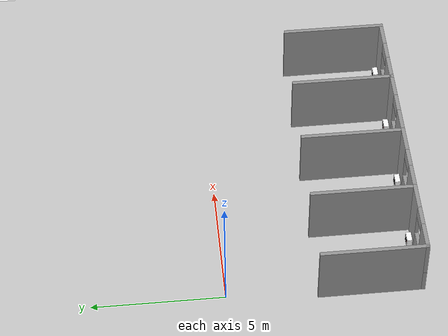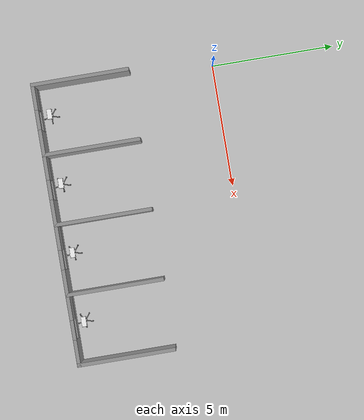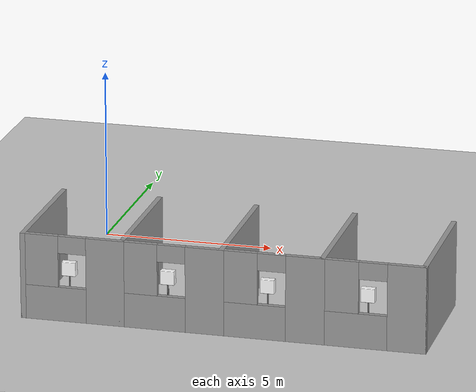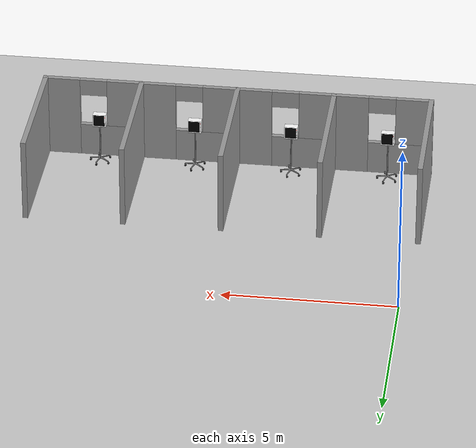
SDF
<sdf version="1.6">
 <world name="default">
  <model name="ground_plane">
   <static>1</static>
   <link name="link">
    <collision name="collision">
     <geometry><plane><normal>0 0 1</normal><size>100 100</size></plane></geometry>
     <surface><friction><ode><mu>100</mu><mu2>50</mu2></ode></friction></surface>
    </collision>
    <visual name="visual">
     <cast_shadows>0</cast_shadows>
     <geometry><plane><normal>0 0 1</normal><size>100 100</size></plane></geometry>
     <material>
      <script><uri>file://media/materials/scripts/gazebo.material</uri><name>Gazebo/Grey</name></script>
     </material>
    </visual>
   </link>
  </model>
  <model name="vitals_monitor">
   <static>1</static>
   <link name="vitals_monitor">
    <collision name="vitals_monitor">
     <geometry><mesh><uri>model://vitals_monitor/meshes/model.dae</uri></mesh></geometry>
    </collision>
    <visual name="vitals_monitor_mesh">
     <geometry><mesh><uri>model://vitals_monitor/meshes/model.dae</uri></mesh></geometry>
    </visual>
   </link>
   <pose>9.47829 -6.89873 0 0 -0 3.14159</pose>
  </model>
  <model name="vitals_monitor_clone">
   <static>1</static>
   <link name="vitals_monitor">
    <collision name="vitals_monitor">
     <geometry><mesh><uri>model://vitals_monitor/meshes/model.dae</uri></mesh></geometry>
    </collision>
    <visual name="vitals_monitor_mesh">
     <geometry><mesh><uri>model://vitals_monitor/meshes/model.dae</uri></mesh></geometry>
    </visual>
   </link>
   <pose>6.64162 -6.89863 0 0 -0 3.14159</pose>
  </model>
  <model name="vitals_monitor_clone_0">
   <static>1</static>
   <link name="vitals_monitor">
    <collision name="vitals_monitor">
     <geometry><mesh><uri>model://vitals_monitor/meshes/model.dae</uri></mesh></geometry>
    </collision>
    <visual name="vitals_monitor_mesh">
     <geometry><mesh><uri>model://vitals_monitor/meshes/model.dae</uri></mesh></geometry>
    </visual>
   </link>
   <pose>3.79191 -6.89962 0 0 -0 3.14159</pose>
  </model>
  <model name="vitals_monitor_clone_1">
   <static>1</static>
   <link name="vitals_monitor">
    <collision name="vitals_monitor">
     <geometry><mesh><uri>model://vitals_monitor/meshes/model.dae</uri></mesh></geometry>
    </collision>
    <visual name="vitals_monitor_mesh">
     <geometry><mesh><uri>model://vitals_monitor/meshes/model.dae</uri></mesh></geometry>
    </visual>
   </link>
   <pose>0.94132 -6.89183 0 0 -0 3.14159</pose>
  </model>
  <model name="hospital_v1">
   <link name="Wall_29">
    <pose>11.125 -5.35 0 0 0 -1.5708</pose>
    <visual name="Wall_29_Visual">
     <pose>0 0 1.25 0 -0 0</pose>
     <geometry><box><size>4 0.15 2.5</size></box></geometry>
     <material>
      <script><uri>file://media/materials/scripts/gazebo.material</uri><name>Gazebo/Grey</name></script>
      <ambient>1 1 1 1</ambient>
     </material>
     <meta><layer>0</layer></meta>
    </visual>
    <collision name="Wall_29_Collision">
     <pose>0 0 1.25 0 -0 0</pose>
     <geometry><box><size>4 0.15 2.5</size></box></geometry>
     <surface>
      <friction>
       <ode><mu>1</mu><mu2>1</mu2><fdir1>0 0 0</fdir1><slip1>0</slip1><slip2>0</slip2></ode>
       <torsional>
        <coefficient>1</coefficient>
        <patch_radius>0</patch_radius>
        <surface_radius>0</surface_radius>
        <use_patch_radius>1</use_patch_radius>
        <ode><slip>0</slip></ode>
       </torsional>
      </friction>
      <bounce><restitution_coefficient>0</restitution_coefficient><threshold>1e+06</threshold></bounce>
      <contact>
       <collide_without_contact>0</collide_without_contact>
       <collide_without_contact_bitmask>1</collide_without_contact_bitmask>
       <collide_bitmask>1</collide_bitmask>
       <ode>
        <soft_cfm>0</soft_cfm>
        <soft_erp>0.2</soft_erp>
        <kp>1e+13</kp>
        <kd>1</kd>
        <max_vel>0.01</max_vel>
        <min_depth>0</min_depth>
       </ode>
       <bullet>
        <split_impulse>1</split_impulse>
        <split_impulse_penetration_threshold>-0.01</split_impulse_penetration_threshold>
        <soft_cfm>0</soft_cfm>
        <soft_erp>0.2</soft_erp>
        <kp>1e+13</kp>
        <kd>1</kd>
       </bullet>
      </contact>
     </surface>
    </collision>
   </link>
   <link name="Wall_30">
    <pose>9.7 -7.275 0 0 -0 3.14159</pose>
    <inertial>
     <mass>1</mass>
     <inertia><ixx>1</ixx><ixy>0</ixy><ixz>0</ixz><iyy>1</iyy><iyz>0</iyz><izz>1</izz></inertia>
    </inertial>
    <visual name="Wall_30_Visual_1">
     <pose>0.55 0 0.5 0 -0 0</pose>
     <geometry><box><size>1.9 0.15 1</size></box></geometry>
     <material>
      <script><uri>file://media/materials/scripts/gazebo.material</uri><name>Gazebo/Grey</name></script>
      <ambient>1 1 1 1</ambient>
      <shader type="vertex"><normal_map>__default__</normal_map></shader>
      <diffuse>0.7 0.7 0.7 1</diffuse>
      <specular>0.01 0.01 0.01 1</specular>
      <emissive>0 0 0 1</emissive>
     </material>
     <meta><layer>0</layer></meta>
    </visual>
    <visual name="Wall_30_Visual_2">
     <pose>0.95 0 1.75 0 -0 0</pose>
     <geometry><box><size>1.1 0.15 1.5</size></box></geometry>
     <material>
      <script><uri>file://media/materials/scripts/gazebo.material</uri><name>Gazebo/Grey</name></script>
      <ambient>1 1 1 1</ambient>
      <shader type="vertex"><normal_map>__default__</normal_map></shader>
      <diffuse>0.7 0.7 0.7 1</diffuse>
      <specular>0.01 0.01 0.01 1</specular>
      <emissive>0 0 0 1</emissive>
     </material>
     <meta><layer>0</layer></meta>
    </visual>
    <visual name="Wall_30_Visual_0">
     <pose>-0.95 0 1.25 0 -0 0</pose>
     <geometry><box><size>1.1 0.15 2.5</size></box></geometry>
     <material>
      <script><uri>file://media/materials/scripts/gazebo.material</uri><name>Gazebo/Grey</name></script>
      <ambient>1 1 1 1</ambient>
      <shader type="vertex"><normal_map>__default__</normal_map></shader>
      <diffuse>0.7 0.7 0.7 1</diffuse>
      <specular>0.01 0.01 0.01 1</specular>
      <emissive>0 0 0 1</emissive>
     </material>
     <meta><layer>0</layer></meta>
    </visual>
    <visual name="Wall_30_Visual_3">
     <pose>0 0 2.25 0 -0 0</pose>
     <geometry><box><size>0.8 0.15 0.5</size></box></geometry>
     <material>
      <script><uri>file://media/materials/scripts/gazebo.material</uri><name>Gazebo/Grey</name></script>
      <ambient>1 1 1 1</ambient>
      <shader type="vertex"><normal_map>__default__</normal_map></shader>
      <diffuse>0.7 0.7 0.7 1</diffuse>
      <specular>0.01 0.01 0.01 1</specular>
      <emissive>0 0 0 1</emissive>
     </material>
     <meta><layer>0</layer></meta>
    </visual>
    <collision name="Wall_30_Collision_0">
     <pose>-0.95 0 1.25 0 -0 0</pose>
     <geometry><box><size>1.1 0.15 2.5</size></box></geometry>
     <surface>
      <friction>
       <ode><mu>1</mu><mu2>1</mu2><fdir1>0 0 0</fdir1><slip1>0</slip1><slip2>0</slip2></ode>
       <torsional>
        <coefficient>1</coefficient>
        <patch_radius>0</patch_radius>
        <surface_radius>0</surface_radius>
        <use_patch_radius>1</use_patch_radius>
        <ode><slip>0</slip></ode>
       </torsional>
      </friction>
      <bounce><restitution_coefficient>0</restitution_coefficient><threshold>1e+06</threshold></bounce>
      <contact>
       <collide_without_contact>0</collide_without_contact>
       <collide_without_contact_bitmask>1</collide_without_contact_bitmask>
       <collide_bitmask>1</collide_bitmask>
       <ode>
        <soft_cfm>0</soft_cfm>
        <soft_erp>0.2</soft_erp>
        <kp>1e+13</kp>
        <kd>1</kd>
        <max_vel>0.01</max_vel>
        <min_depth>0</min_depth>
       </ode>
       <bullet>
        <split_impulse>1</split_impulse>
        <split_impulse_penetration_threshold>-0.01</split_impulse_penetration_threshold>
        <soft_cfm>0</soft_cfm>
        <soft_erp>0.2</soft_erp>
        <kp>1e+13</kp>
        <kd>1</kd>
       </bullet>
      </contact>
     </surface>
    </collision>
    <collision name="Wall_30_Collision_3">
     <pose>0 0 2.25 0 -0 0</pose>
     <geometry><box><size>0.8 0.15 0.5</size></box></geometry>
     <surface>
      <friction>
       <ode><mu>1</mu><mu2>1</mu2><fdir1>0 0 0</fdir1><slip1>0</slip1><slip2>0</slip2></ode>
       <torsional>
        <coefficient>1</coefficient>
        <patch_radius>0</patch_radius>
        <surface_radius>0</surface_radius>
        <use_patch_radius>1</use_patch_radius>
        <ode><slip>0</slip></ode>
       </torsional>
      </friction>
      <bounce><restitution_coefficient>0</restitution_coefficient><threshold>1e+06</threshold></bounce>
      <contact>
       <collide_without_contact>0</collide_without_contact>
       <collide_without_contact_bitmask>1</collide_without_contact_bitmask>
       <collide_bitmask>1</collide_bitmask>
       <ode>
        <soft_cfm>0</soft_cfm>
        <soft_erp>0.2</soft_erp>
        <kp>1e+13</kp>
        <kd>1</kd>
        <max_vel>0.01</max_vel>
        <min_depth>0</min_depth>
       </ode>
       <bullet>
        <split_impulse>1</split_impulse>
        <split_impulse_penetration_threshold>-0.01</split_impulse_penetration_threshold>
        <soft_cfm>0</soft_cfm>
        <soft_erp>0.2</soft_erp>
        <kp>1e+13</kp>
        <kd>1</kd>
       </bullet>
      </contact>
     </surface>
    </collision>
    <collision name="Wall_30_Collision_2">
     <pose>0.95 0 1.75 0 -0 0</pose>
     <geometry><box><size>1.1 0.15 1.5</size></box></geometry>
     <surface>
      <friction>
       <ode><mu>1</mu><mu2>1</mu2><fdir1>0 0 0</fdir1><slip1>0</slip1><slip2>0</slip2></ode>
       <torsional>
        <coefficient>1</coefficient>
        <patch_radius>0</patch_radius>
        <surface_radius>0</surface_radius>
        <use_patch_radius>1</use_patch_radius>
        <ode><slip>0</slip></ode>
       </torsional>
      </friction>
      <bounce><restitution_coefficient>0</restitution_coefficient><threshold>1e+06</threshold></bounce>
      <contact>
       <collide_without_contact>0</collide_without_contact>
       <collide_without_contact_bitmask>1</collide_without_contact_bitmask>
       <collide_bitmask>1</collide_bitmask>
       <ode>
        <soft_cfm>0</soft_cfm>
        <soft_erp>0.2</soft_erp>
        <kp>1e+13</kp>
        <kd>1</kd>
        <max_vel>0.01</max_vel>
        <min_depth>0</min_depth>
       </ode>
       <bullet>
        <split_impulse>1</split_impulse>
        <split_impulse_penetration_threshold>-0.01</split_impulse_penetration_threshold>
        <soft_cfm>0</soft_cfm>
        <soft_erp>0.2</soft_erp>
        <kp>1e+13</kp>
        <kd>1</kd>
       </bullet>
      </contact>
     </surface>
    </collision>
    <collision name="Wall_30_Collision_1">
     <pose>0.55 0 0.5 0 -0 0</pose>
     <geometry><box><size>1.9 0.15 1</size></box></geometry>
     <surface>
      <friction>
       <ode><mu>1</mu><mu2>1</mu2><fdir1>0 0 0</fdir1><slip1>0</slip1><slip2>0</slip2></ode>
       <torsional>
        <coefficient>1</coefficient>
        <patch_radius>0</patch_radius>
        <surface_radius>0</surface_radius>
        <use_patch_radius>1</use_patch_radius>
        <ode><slip>0</slip></ode>
       </torsional>
      </friction>
      <bounce><restitution_coefficient>0</restitution_coefficient><threshold>1e+06</threshold></bounce>
      <contact>
       <collide_without_contact>0</collide_without_contact>
       <collide_without_contact_bitmask>1</collide_without_contact_bitmask>
       <collide_bitmask>1</collide_bitmask>
       <ode>
        <soft_cfm>0</soft_cfm>
        <soft_erp>0.2</soft_erp>
        <kp>1e+13</kp>
        <kd>1</kd>
        <max_vel>0.01</max_vel>
        <min_depth>0</min_depth>
       </ode>
       <bullet>
        <split_impulse>1</split_impulse>
        <split_impulse_penetration_threshold>-0.01</split_impulse_penetration_threshold>
        <soft_cfm>0</soft_cfm>
        <soft_erp>0.2</soft_erp>
        <kp>1e+13</kp>
        <kd>1</kd>
       </bullet>
      </contact>
     </surface>
    </collision>
   </link>
   <link name="Wall_31">
    <pose>8.275 -5.35 0 0 -0 1.5708</pose>
    <visual name="Wall_31_Visual">
     <pose>0 0 1.25 0 -0 0</pose>
     <geometry><box><size>4 0.15 2.5</size></box></geometry>
     <material>
      <script><uri>file://media/materials/scripts/gazebo.material</uri><name>Gazebo/Grey</name></script>
      <ambient>1 1 1 1</ambient>
     </material>
     <meta><layer>0</layer></meta>
    </visual>
    <collision name="Wall_31_Collision">
     <pose>0 0 1.25 0 -0 0</pose>
     <geometry><box><size>4 0.15 2.5</size></box></geometry>
     <surface>
      <friction>
       <ode><mu>1</mu><mu2>1</mu2><fdir1>0 0 0</fdir1><slip1>0</slip1><slip2>0</slip2></ode>
       <torsional>
        <coefficient>1</coefficient>
        <patch_radius>0</patch_radius>
        <surface_radius>0</surface_radius>
        <use_patch_radius>1</use_patch_radius>
        <ode><slip>0</slip></ode>
       </torsional>
      </friction>
      <bounce><restitution_coefficient>0</restitution_coefficient><threshold>1e+06</threshold></bounce>
      <contact>
       <collide_without_contact>0</collide_without_contact>
       <collide_without_contact_bitmask>1</collide_without_contact_bitmask>
       <collide_bitmask>1</collide_bitmask>
       <ode>
        <soft_cfm>0</soft_cfm>
        <soft_erp>0.2</soft_erp>
        <kp>1e+13</kp>
        <kd>1</kd>
        <max_vel>0.01</max_vel>
        <min_depth>0</min_depth>
       </ode>
       <bullet>
        <split_impulse>1</split_impulse>
        <split_impulse_penetration_threshold>-0.01</split_impulse_penetration_threshold>
        <soft_cfm>0</soft_cfm>
        <soft_erp>0.2</soft_erp>
        <kp>1e+13</kp>
        <kd>1</kd>
       </bullet>
      </contact>
     </surface>
    </collision>
   </link>
   <link name="Wall_34">
    <pose>6.85 -7.275 0 0 -0 3.14159</pose>
    <inertial>
     <mass>1</mass>
     <inertia><ixx>1</ixx><ixy>0</ixy><ixz>0</ixz><iyy>1</iyy><iyz>0</iyz><izz>1</izz></inertia>
    </inertial>
    <visual name="Wall_34_Visual_3">
     <pose>0 0 2.25 0 -0 0</pose>
     <geometry><box><size>0.8 0.15 0.5</size></box></geometry>
     <material>
      <script><uri>file://media/materials/scripts/gazebo.material</uri><name>Gazebo/Grey</name></script>
      <ambient>1 1 1 1</ambient>
      <shader type="vertex"><normal_map>__default__</normal_map></shader>
      <diffuse>0.7 0.7 0.7 1</diffuse>
      <specular>0.01 0.01 0.01 1</specular>
      <emissive>0 0 0 1</emissive>
     </material>
     <meta><layer>0</layer></meta>
    </visual>
    <visual name="Wall_34_Visual_0">
     <pose>-0.95 0 1.25 0 -0 0</pose>
     <geometry><box><size>1.1 0.15 2.5</size></box></geometry>
     <material>
      <script><uri>file://media/materials/scripts/gazebo.material</uri><name>Gazebo/Grey</name></script>
      <ambient>1 1 1 1</ambient>
      <shader type="vertex"><normal_map>__default__</normal_map></shader>
      <diffuse>0.7 0.7 0.7 1</diffuse>
      <specular>0.01 0.01 0.01 1</specular>
      <emissive>0 0 0 1</emissive>
     </material>
     <meta><layer>0</layer></meta>
    </visual>
    <visual name="Wall_34_Visual_1">
     <pose>0.55 0 0.5 0 -0 0</pose>
     <geometry><box><size>1.9 0.15 1</size></box></geometry>
     <material>
      <script><uri>file://media/materials/scripts/gazebo.material</uri><name>Gazebo/Grey</name></script>
      <ambient>1 1 1 1</ambient>
      <shader type="vertex"><normal_map>__default__</normal_map></shader>
      <diffuse>0.7 0.7 0.7 1</diffuse>
      <specular>0.01 0.01 0.01 1</specular>
      <emissive>0 0 0 1</emissive>
     </material>
     <meta><layer>0</layer></meta>
    </visual>
    <visual name="Wall_34_Visual_2">
     <pose>0.95 0 1.75 0 -0 0</pose>
     <geometry><box><size>1.1 0.15 1.5</size></box></geometry>
     <material>
      <script><uri>file://media/materials/scripts/gazebo.material</uri><name>Gazebo/Grey</name></script>
      <ambient>1 1 1 1</ambient>
      <shader type="vertex"><normal_map>__default__</normal_map></shader>
      <diffuse>0.7 0.7 0.7 1</diffuse>
      <specular>0.01 0.01 0.01 1</specular>
      <emissive>0 0 0 1</emissive>
     </material>
     <meta><layer>0</layer></meta>
    </visual>
    <collision name="Wall_34_Collision_0">
     <pose>-0.95 0 1.25 0 -0 0</pose>
     <geometry><box><size>1.1 0.15 2.5</size></box></geometry>
     <surface>
      <friction>
       <ode><mu>1</mu><mu2>1</mu2><fdir1>0 0 0</fdir1><slip1>0</slip1><slip2>0</slip2></ode>
       <torsional>
        <coefficient>1</coefficient>
        <patch_radius>0</patch_radius>
        <surface_radius>0</surface_radius>
        <use_patch_radius>1</use_patch_radius>
        <ode><slip>0</slip></ode>
       </torsional>
      </friction>
      <bounce><restitution_coefficient>0</restitution_coefficient><threshold>1e+06</threshold></bounce>
      <contact>
       <collide_without_contact>0</collide_without_contact>
       <collide_without_contact_bitmask>1</collide_without_contact_bitmask>
       <collide_bitmask>1</collide_bitmask>
       <ode>
        <soft_cfm>0</soft_cfm>
        <soft_erp>0.2</soft_erp>
        <kp>1e+13</kp>
        <kd>1</kd>
        <max_vel>0.01</max_vel>
        <min_depth>0</min_depth>
       </ode>
       <bullet>
        <split_impulse>1</split_impulse>
        <split_impulse_penetration_threshold>-0.01</split_impulse_penetration_threshold>
        <soft_cfm>0</soft_cfm>
        <soft_erp>0.2</soft_erp>
        <kp>1e+13</kp>
        <kd>1</kd>
       </bullet>
      </contact>
     </surface>
    </collision>
    <collision name="Wall_34_Collision_2">
     <pose>0.95 0 1.75 0 -0 0</pose>
     <geometry><box><size>1.1 0.15 1.5</size></box></geometry>
     <surface>
      <friction>
       <ode><mu>1</mu><mu2>1</mu2><fdir1>0 0 0</fdir1><slip1>0</slip1><slip2>0</slip2></ode>
       <torsional>
        <coefficient>1</coefficient>
        <patch_radius>0</patch_radius>
        <surface_radius>0</surface_radius>
        <use_patch_radius>1</use_patch_radius>
        <ode><slip>0</slip></ode>
       </torsional>
      </friction>
      <bounce><restitution_coefficient>0</restitution_coefficient><threshold>1e+06</threshold></bounce>
      <contact>
       <collide_without_contact>0</collide_without_contact>
       <collide_without_contact_bitmask>1</collide_without_contact_bitmask>
       <collide_bitmask>1</collide_bitmask>
       <ode>
        <soft_cfm>0</soft_cfm>
        <soft_erp>0.2</soft_erp>
        <kp>1e+13</kp>
        <kd>1</kd>
        <max_vel>0.01</max_vel>
        <min_depth>0</min_depth>
       </ode>
       <bullet>
        <split_impulse>1</split_impulse>
        <split_impulse_penetration_threshold>-0.01</split_impulse_penetration_threshold>
        <soft_cfm>0</soft_cfm>
        <soft_erp>0.2</soft_erp>
        <kp>1e+13</kp>
        <kd>1</kd>
       </bullet>
      </contact>
     </surface>
    </collision>
    <collision name="Wall_34_Collision_1">
     <pose>0.55 0 0.5 0 -0 0</pose>
     <geometry><box><size>1.9 0.15 1</size></box></geometry>
     <surface>
      <friction>
       <ode><mu>1</mu><mu2>1</mu2><fdir1>0 0 0</fdir1><slip1>0</slip1><slip2>0</slip2></ode>
       <torsional>
        <coefficient>1</coefficient>
        <patch_radius>0</patch_radius>
        <surface_radius>0</surface_radius>
        <use_patch_radius>1</use_patch_radius>
        <ode><slip>0</slip></ode>
       </torsional>
      </friction>
      <bounce><restitution_coefficient>0</restitution_coefficient><threshold>1e+06</threshold></bounce>
      <contact>
       <collide_without_contact>0</collide_without_contact>
       <collide_without_contact_bitmask>1</collide_without_contact_bitmask>
       <collide_bitmask>1</collide_bitmask>
       <ode>
        <soft_cfm>0</soft_cfm>
        <soft_erp>0.2</soft_erp>
        <kp>1e+13</kp>
        <kd>1</kd>
        <max_vel>0.01</max_vel>
        <min_depth>0</min_depth>
       </ode>
       <bullet>
        <split_impulse>1</split_impulse>
        <split_impulse_penetration_threshold>-0.01</split_impulse_penetration_threshold>
        <soft_cfm>0</soft_cfm>
        <soft_erp>0.2</soft_erp>
        <kp>1e+13</kp>
        <kd>1</kd>
       </bullet>
      </contact>
     </surface>
    </collision>
    <collision name="Wall_34_Collision_3">
     <pose>0 0 2.25 0 -0 0</pose>
     <geometry><box><size>0.8 0.15 0.5</size></box></geometry>
     <surface>
      <friction>
       <ode><mu>1</mu><mu2>1</mu2><fdir1>0 0 0</fdir1><slip1>0</slip1><slip2>0</slip2></ode>
       <torsional>
        <coefficient>1</coefficient>
        <patch_radius>0</patch_radius>
        <surface_radius>0</surface_radius>
        <use_patch_radius>1</use_patch_radius>
        <ode><slip>0</slip></ode>
       </torsional>
      </friction>
      <bounce><restitution_coefficient>0</restitution_coefficient><threshold>1e+06</threshold></bounce>
      <contact>
       <collide_without_contact>0</collide_without_contact>
       <collide_without_contact_bitmask>1</collide_without_contact_bitmask>
       <collide_bitmask>1</collide_bitmask>
       <ode>
        <soft_cfm>0</soft_cfm>
        <soft_erp>0.2</soft_erp>
        <kp>1e+13</kp>
        <kd>1</kd>
        <max_vel>0.01</max_vel>
        <min_depth>0</min_depth>
       </ode>
       <bullet>
        <split_impulse>1</split_impulse>
        <split_impulse_penetration_threshold>-0.01</split_impulse_penetration_threshold>
        <soft_cfm>0</soft_cfm>
        <soft_erp>0.2</soft_erp>
        <kp>1e+13</kp>
        <kd>1</kd>
       </bullet>
      </contact>
     </surface>
    </collision>
   </link>
   <link name="Wall_35">
    <pose>5.425 -5.35 0 0 -0 1.5708</pose>
    <visual name="Wall_35_Visual">
     <pose>0 0 1.25 0 -0 0</pose>
     <geometry><box><size>4 0.15 2.5</size></box></geometry>
     <material>
      <script><uri>file://media/materials/scripts/gazebo.material</uri><name>Gazebo/Grey</name></script>
      <ambient>1 1 1 1</ambient>
     </material>
     <meta><layer>0</layer></meta>
    </visual>
    <collision name="Wall_35_Collision">
     <pose>0 0 1.25 0 -0 0</pose>
     <geometry><box><size>4 0.15 2.5</size></box></geometry>
     <surface>
      <friction>
       <ode><mu>1</mu><mu2>1</mu2><fdir1>0 0 0</fdir1><slip1>0</slip1><slip2>0</slip2></ode>
       <torsional>
        <coefficient>1</coefficient>
        <patch_radius>0</patch_radius>
        <surface_radius>0</surface_radius>
        <use_patch_radius>1</use_patch_radius>
        <ode><slip>0</slip></ode>
       </torsional>
      </friction>
      <bounce><restitution_coefficient>0</restitution_coefficient><threshold>1e+06</threshold></bounce>
      <contact>
       <collide_without_contact>0</collide_without_contact>
       <collide_without_contact_bitmask>1</collide_without_contact_bitmask>
       <collide_bitmask>1</collide_bitmask>
       <ode>
        <soft_cfm>0</soft_cfm>
        <soft_erp>0.2</soft_erp>
        <kp>1e+13</kp>
        <kd>1</kd>
        <max_vel>0.01</max_vel>
        <min_depth>0</min_depth>
       </ode>
       <bullet>
        <split_impulse>1</split_impulse>
        <split_impulse_penetration_threshold>-0.01</split_impulse_penetration_threshold>
        <soft_cfm>0</soft_cfm>
        <soft_erp>0.2</soft_erp>
        <kp>1e+13</kp>
        <kd>1</kd>
       </bullet>
      </contact>
     </surface>
    </collision>
   </link>
   <link name="Wall_38">
    <pose>4 -7.275 0 0 -0 3.14159</pose>
    <inertial>
     <mass>1</mass>
     <inertia><ixx>1</ixx><ixy>0</ixy><ixz>0</ixz><iyy>1</iyy><iyz>0</iyz><izz>1</izz></inertia>
    </inertial>
    <visual name="Wall_38_Visual_1">
     <pose>0.55 0 0.5 0 -0 0</pose>
     <geometry><box><size>1.9 0.15 1</size></box></geometry>
     <material>
      <script><uri>file://media/materials/scripts/gazebo.material</uri><name>Gazebo/Grey</name></script>
      <ambient>1 1 1 1</ambient>
      <shader type="vertex"><normal_map>__default__</normal_map></shader>
      <diffuse>0.7 0.7 0.7 1</diffuse>
      <specular>0.01 0.01 0.01 1</specular>
      <emissive>0 0 0 1</emissive>
     </material>
     <meta><layer>0</layer></meta>
    </visual>
    <visual name="Wall_38_Visual_3">
     <pose>0 0 2.25 0 -0 0</pose>
     <geometry><box><size>0.8 0.15 0.5</size></box></geometry>
     <material>
      <script><uri>file://media/materials/scripts/gazebo.material</uri><name>Gazebo/Grey</name></script>
      <ambient>1 1 1 1</ambient>
      <shader type="vertex"><normal_map>__default__</normal_map></shader>
      <diffuse>0.7 0.7 0.7 1</diffuse>
      <specular>0.01 0.01 0.01 1</specular>
      <emissive>0 0 0 1</emissive>
     </material>
     <meta><layer>0</layer></meta>
    </visual>
    <visual name="Wall_38_Visual_0">
     <pose>-0.95 0 1.25 0 -0 0</pose>
     <geometry><box><size>1.1 0.15 2.5</size></box></geometry>
     <material>
      <script><uri>file://media/materials/scripts/gazebo.material</uri><name>Gazebo/Grey</name></script>
      <ambient>1 1 1 1</ambient>
      <shader type="vertex"><normal_map>__default__</normal_map></shader>
      <diffuse>0.7 0.7 0.7 1</diffuse>
      <specular>0.01 0.01 0.01 1</specular>
      <emissive>0 0 0 1</emissive>
     </material>
     <meta><layer>0</layer></meta>
    </visual>
    <visual name="Wall_38_Visual_2">
     <pose>0.95 0 1.75 0 -0 0</pose>
     <geometry><box><size>1.1 0.15 1.5</size></box></geometry>
     <material>
      <script><uri>file://media/materials/scripts/gazebo.material</uri><name>Gazebo/Grey</name></script>
      <ambient>1 1 1 1</ambient>
      <shader type="vertex"><normal_map>__default__</normal_map></shader>
      <diffuse>0.7 0.7 0.7 1</diffuse>
      <specular>0.01 0.01 0.01 1</specular>
      <emissive>0 0 0 1</emissive>
     </material>
     <meta><layer>0</layer></meta>
    </visual>
    <collision name="Wall_38_Collision_0">
     <pose>-0.95 0 1.25 0 -0 0</pose>
     <geometry><box><size>1.1 0.15 2.5</size></box></geometry>
     <surface>
      <friction>
       <ode><mu>1</mu><mu2>1</mu2><fdir1>0 0 0</fdir1><slip1>0</slip1><slip2>0</slip2></ode>
       <torsional>
        <coefficient>1</coefficient>
        <patch_radius>0</patch_radius>
        <surface_radius>0</surface_radius>
        <use_patch_radius>1</use_patch_radius>
        <ode><slip>0</slip></ode>
       </torsional>
      </friction>
      <bounce><restitution_coefficient>0</restitution_coefficient><threshold>1e+06</threshold></bounce>
      <contact>
       <collide_without_contact>0</collide_without_contact>
       <collide_without_contact_bitmask>1</collide_without_contact_bitmask>
       <collide_bitmask>1</collide_bitmask>
       <ode>
        <soft_cfm>0</soft_cfm>
        <soft_erp>0.2</soft_erp>
        <kp>1e+13</kp>
        <kd>1</kd>
        <max_vel>0.01</max_vel>
        <min_depth>0</min_depth>
       </ode>
       <bullet>
        <split_impulse>1</split_impulse>
        <split_impulse_penetration_threshold>-0.01</split_impulse_penetration_threshold>
        <soft_cfm>0</soft_cfm>
        <soft_erp>0.2</soft_erp>
        <kp>1e+13</kp>
        <kd>1</kd>
       </bullet>
      </contact>
     </surface>
    </collision>
    <collision name="Wall_38_Collision_3">
     <pose>0 0 2.25 0 -0 0</pose>
     <geometry><box><size>0.8 0.15 0.5</size></box></geometry>
     <surface>
      <friction>
       <ode><mu>1</mu><mu2>1</mu2><fdir1>0 0 0</fdir1><slip1>0</slip1><slip2>0</slip2></ode>
       <torsional>
        <coefficient>1</coefficient>
        <patch_radius>0</patch_radius>
        <surface_radius>0</surface_radius>
        <use_patch_radius>1</use_patch_radius>
        <ode><slip>0</slip></ode>
       </torsional>
      </friction>
      <bounce><restitution_coefficient>0</restitution_coefficient><threshold>1e+06</threshold></bounce>
      <contact>
       <collide_without_contact>0</collide_without_contact>
       <collide_without_contact_bitmask>1</collide_without_contact_bitmask>
       <collide_bitmask>1</collide_bitmask>
       <ode>
        <soft_cfm>0</soft_cfm>
        <soft_erp>0.2</soft_erp>
        <kp>1e+13</kp>
        <kd>1</kd>
        <max_vel>0.01</max_vel>
        <min_depth>0</min_depth>
       </ode>
       <bullet>
        <split_impulse>1</split_impulse>
        <split_impulse_penetration_threshold>-0.01</split_impulse_penetration_threshold>
        <soft_cfm>0</soft_cfm>
        <soft_erp>0.2</soft_erp>
        <kp>1e+13</kp>
        <kd>1</kd>
       </bullet>
      </contact>
     </surface>
    </collision>
    <collision name="Wall_38_Collision_1">
     <pose>0.55 0 0.5 0 -0 0</pose>
     <geometry><box><size>1.9 0.15 1</size></box></geometry>
     <surface>
      <friction>
       <ode><mu>1</mu><mu2>1</mu2><fdir1>0 0 0</fdir1><slip1>0</slip1><slip2>0</slip2></ode>
       <torsional>
        <coefficient>1</coefficient>
        <patch_radius>0</patch_radius>
        <surface_radius>0</surface_radius>
        <use_patch_radius>1</use_patch_radius>
        <ode><slip>0</slip></ode>
       </torsional>
      </friction>
      <bounce><restitution_coefficient>0</restitution_coefficient><threshold>1e+06</threshold></bounce>
      <contact>
       <collide_without_contact>0</collide_without_contact>
       <collide_without_contact_bitmask>1</collide_without_contact_bitmask>
       <collide_bitmask>1</collide_bitmask>
       <ode>
        <soft_cfm>0</soft_cfm>
        <soft_erp>0.2</soft_erp>
        <kp>1e+13</kp>
        <kd>1</kd>
        <max_vel>0.01</max_vel>
        <min_depth>0</min_depth>
       </ode>
       <bullet>
        <split_impulse>1</split_impulse>
        <split_impulse_penetration_threshold>-0.01</split_impulse_penetration_threshold>
        <soft_cfm>0</soft_cfm>
        <soft_erp>0.2</soft_erp>
        <kp>1e+13</kp>
        <kd>1</kd>
       </bullet>
      </contact>
     </surface>
    </collision>
    <collision name="Wall_38_Collision_2">
     <pose>0.95 0 1.75 0 -0 0</pose>
     <geometry><box><size>1.1 0.15 1.5</size></box></geometry>
     <surface>
      <friction>
       <ode><mu>1</mu><mu2>1</mu2><fdir1>0 0 0</fdir1><slip1>0</slip1><slip2>0</slip2></ode>
       <torsional>
        <coefficient>1</coefficient>
        <patch_radius>0</patch_radius>
        <surface_radius>0</surface_radius>
        <use_patch_radius>1</use_patch_radius>
        <ode><slip>0</slip></ode>
       </torsional>
      </friction>
      <bounce><restitution_coefficient>0</restitution_coefficient><threshold>1e+06</threshold></bounce>
      <contact>
       <collide_without_contact>0</collide_without_contact>
       <collide_without_contact_bitmask>1</collide_without_contact_bitmask>
       <collide_bitmask>1</collide_bitmask>
       <ode>
        <soft_cfm>0</soft_cfm>
        <soft_erp>0.2</soft_erp>
        <kp>1e+13</kp>
        <kd>1</kd>
        <max_vel>0.01</max_vel>
        <min_depth>0</min_depth>
       </ode>
       <bullet>
        <split_impulse>1</split_impulse>
        <split_impulse_penetration_threshold>-0.01</split_impulse_penetration_threshold>
        <soft_cfm>0</soft_cfm>
        <soft_erp>0.2</soft_erp>
        <kp>1e+13</kp>
        <kd>1</kd>
       </bullet>
      </contact>
     </surface>
    </collision>
   </link>
   <link name="Wall_39">
    <pose>2.575 -5.35 0 0 -0 1.5708</pose>
    <visual name="Wall_39_Visual">
     <pose>0 0 1.25 0 -0 0</pose>
     <geometry><box><size>4 0.15 2.5</size></box></geometry>
     <material>
      <script><uri>file://media/materials/scripts/gazebo.material</uri><name>Gazebo/Grey</name></script>
      <ambient>1 1 1 1</ambient>
     </material>
     <meta><layer>0</layer></meta>
    </visual>
    <collision name="Wall_39_Collision">
     <pose>0 0 1.25 0 -0 0</pose>
     <geometry><box><size>4 0.15 2.5</size></box></geometry>
     <surface>
      <friction>
       <ode><mu>1</mu><mu2>1</mu2><fdir1>0 0 0</fdir1><slip1>0</slip1><slip2>0</slip2></ode>
       <torsional>
        <coefficient>1</coefficient>
        <patch_radius>0</patch_radius>
        <surface_radius>0</surface_radius>
        <use_patch_radius>1</use_patch_radius>
        <ode><slip>0</slip></ode>
       </torsional>
      </friction>
      <bounce><restitution_coefficient>0</restitution_coefficient><threshold>1e+06</threshold></bounce>
      <contact>
       <collide_without_contact>0</collide_without_contact>
       <collide_without_contact_bitmask>1</collide_without_contact_bitmask>
       <collide_bitmask>1</collide_bitmask>
       <ode>
        <soft_cfm>0</soft_cfm>
        <soft_erp>0.2</soft_erp>
        <kp>1e+13</kp>
        <kd>1</kd>
        <max_vel>0.01</max_vel>
        <min_depth>0</min_depth>
       </ode>
       <bullet>
        <split_impulse>1</split_impulse>
        <split_impulse_penetration_threshold>-0.01</split_impulse_penetration_threshold>
        <soft_cfm>0</soft_cfm>
        <soft_erp>0.2</soft_erp>
        <kp>1e+13</kp>
        <kd>1</kd>
       </bullet>
      </contact>
     </surface>
    </collision>
   </link>
   <link name="Wall_42">
    <pose>1.15 -7.275 0 0 -0 3.14159</pose>
    <inertial>
     <mass>1</mass>
     <inertia><ixx>1</ixx><ixy>0</ixy><ixz>0</ixz><iyy>1</iyy><iyz>0</iyz><izz>1</izz></inertia>
    </inertial>
    <visual name="Wall_42_Visual_2">
     <pose>0.95 0 1.75 0 -0 0</pose>
     <geometry><box><size>1.1 0.15 1.5</size></box></geometry>
     <material>
      <script><uri>file://media/materials/scripts/gazebo.material</uri><name>Gazebo/Grey</name></script>
      <ambient>1 1 1 1</ambient>
      <shader type="vertex"><normal_map>__default__</normal_map></shader>
      <diffuse>0.7 0.7 0.7 1</diffuse>
      <specular>0.01 0.01 0.01 1</specular>
      <emissive>0 0 0 1</emissive>
     </material>
     <meta><layer>0</layer></meta>
    </visual>
    <visual name="Wall_42_Visual_0">
     <pose>-0.95 0 1.25 0 -0 0</pose>
     <geometry><box><size>1.1 0.15 2.5</size></box></geometry>
     <material>
      <script><uri>file://media/materials/scripts/gazebo.material</uri><name>Gazebo/Grey</name></script>
      <ambient>1 1 1 1</ambient>
      <shader type="vertex"><normal_map>__default__</normal_map></shader>
      <diffuse>0.7 0.7 0.7 1</diffuse>
      <specular>0.01 0.01 0.01 1</specular>
      <emissive>0 0 0 1</emissive>
     </material>
     <meta><layer>0</layer></meta>
    </visual>
    <visual name="Wall_42_Visual_1">
     <pose>0.55 0 0.5 0 -0 0</pose>
     <geometry><box><size>1.9 0.15 1</size></box></geometry>
     <material>
      <script><uri>file://media/materials/scripts/gazebo.material</uri><name>Gazebo/Grey</name></script>
      <ambient>1 1 1 1</ambient>
      <shader type="vertex"><normal_map>__default__</normal_map></shader>
      <diffuse>0.7 0.7 0.7 1</diffuse>
      <specular>0.01 0.01 0.01 1</specular>
      <emissive>0 0 0 1</emissive>
     </material>
     <meta><layer>0</layer></meta>
    </visual>
    <visual name="Wall_42_Visual_3">
     <pose>0 0 2.25 0 -0 0</pose>
     <geometry><box><size>0.8 0.15 0.5</size></box></geometry>
     <material>
      <script><uri>file://media/materials/scripts/gazebo.material</uri><name>Gazebo/Grey</name></script>
      <ambient>1 1 1 1</ambient>
      <shader type="vertex"><normal_map>__default__</normal_map></shader>
      <diffuse>0.7 0.7 0.7 1</diffuse>
      <specular>0.01 0.01 0.01 1</specular>
      <emissive>0 0 0 1</emissive>
     </material>
     <meta><layer>0</layer></meta>
    </visual>
    <collision name="Wall_42_Collision_3">
     <pose>0 0 2.25 0 -0 0</pose>
     <geometry><box><size>0.8 0.15 0.5</size></box></geometry>
     <surface>
      <friction>
       <ode><mu>1</mu><mu2>1</mu2><fdir1>0 0 0</fdir1><slip1>0</slip1><slip2>0</slip2></ode>
       <torsional>
        <coefficient>1</coefficient>
        <patch_radius>0</patch_radius>
        <surface_radius>0</surface_radius>
        <use_patch_radius>1</use_patch_radius>
        <ode><slip>0</slip></ode>
       </torsional>
      </friction>
      <bounce><restitution_coefficient>0</restitution_coefficient><threshold>1e+06</threshold></bounce>
      <contact>
       <collide_without_contact>0</collide_without_contact>
       <collide_without_contact_bitmask>1</collide_without_contact_bitmask>
       <collide_bitmask>1</collide_bitmask>
       <ode>
        <soft_cfm>0</soft_cfm>
        <soft_erp>0.2</soft_erp>
        <kp>1e+13</kp>
        <kd>1</kd>
        <max_vel>0.01</max_vel>
        <min_depth>0</min_depth>
       </ode>
       <bullet>
        <split_impulse>1</split_impulse>
        <split_impulse_penetration_threshold>-0.01</split_impulse_penetration_threshold>
        <soft_cfm>0</soft_cfm>
        <soft_erp>0.2</soft_erp>
        <kp>1e+13</kp>
        <kd>1</kd>
       </bullet>
      </contact>
     </surface>
    </collision>
    <collision name="Wall_42_Collision_0">
     <pose>-0.95 0 1.25 0 -0 0</pose>
     <geometry><box><size>1.1 0.15 2.5</size></box></geometry>
     <surface>
      <friction>
       <ode><mu>1</mu><mu2>1</mu2><fdir1>0 0 0</fdir1><slip1>0</slip1><slip2>0</slip2></ode>
       <torsional>
        <coefficient>1</coefficient>
        <patch_radius>0</patch_radius>
        <surface_radius>0</surface_radius>
        <use_patch_radius>1</use_patch_radius>
        <ode><slip>0</slip></ode>
       </torsional>
      </friction>
      <bounce><restitution_coefficient>0</restitution_coefficient><threshold>1e+06</threshold></bounce>
      <contact>
       <collide_without_contact>0</collide_without_contact>
       <collide_without_contact_bitmask>1</collide_without_contact_bitmask>
       <collide_bitmask>1</collide_bitmask>
       <ode>
        <soft_cfm>0</soft_cfm>
        <soft_erp>0.2</soft_erp>
        <kp>1e+13</kp>
        <kd>1</kd>
        <max_vel>0.01</max_vel>
        <min_depth>0</min_depth>
       </ode>
       <bullet>
        <split_impulse>1</split_impulse>
        <split_impulse_penetration_threshold>-0.01</split_impulse_penetration_threshold>
        <soft_cfm>0</soft_cfm>
        <soft_erp>0.2</soft_erp>
        <kp>1e+13</kp>
        <kd>1</kd>
       </bullet>
      </contact>
     </surface>
    </collision>
    <collision name="Wall_42_Collision_1">
     <pose>0.55 0 0.5 0 -0 0</pose>
     <geometry><box><size>1.9 0.15 1</size></box></geometry>
     <surface>
      <friction>
       <ode><mu>1</mu><mu2>1</mu2><fdir1>0 0 0</fdir1><slip1>0</slip1><slip2>0</slip2></ode>
       <torsional>
        <coefficient>1</coefficient>
        <patch_radius>0</patch_radius>
        <surface_radius>0</surface_radius>
        <use_patch_radius>1</use_patch_radius>
        <ode><slip>0</slip></ode>
       </torsional>
      </friction>
      <bounce><restitution_coefficient>0</restitution_coefficient><threshold>1e+06</threshold></bounce>
      <contact>
       <collide_without_contact>0</collide_without_contact>
       <collide_without_contact_bitmask>1</collide_without_contact_bitmask>
       <collide_bitmask>1</collide_bitmask>
       <ode>
        <soft_cfm>0</soft_cfm>
        <soft_erp>0.2</soft_erp>
        <kp>1e+13</kp>
        <kd>1</kd>
        <max_vel>0.01</max_vel>
        <min_depth>0</min_depth>
       </ode>
       <bullet>
        <split_impulse>1</split_impulse>
        <split_impulse_penetration_threshold>-0.01</split_impulse_penetration_threshold>
        <soft_cfm>0</soft_cfm>
        <soft_erp>0.2</soft_erp>
        <kp>1e+13</kp>
        <kd>1</kd>
       </bullet>
      </contact>
     </surface>
    </collision>
    <collision name="Wall_42_Collision_2">
     <pose>0.95 0 1.75 0 -0 0</pose>
     <geometry><box><size>1.1 0.15 1.5</size></box></geometry>
     <surface>
      <friction>
       <ode><mu>1</mu><mu2>1</mu2><fdir1>0 0 0</fdir1><slip1>0</slip1><slip2>0</slip2></ode>
       <torsional>
        <coefficient>1</coefficient>
        <patch_radius>0</patch_radius>
        <surface_radius>0</surface_radius>
        <use_patch_radius>1</use_patch_radius>
        <ode><slip>0</slip></ode>
       </torsional>
      </friction>
      <bounce><restitution_coefficient>0</restitution_coefficient><threshold>1e+06</threshold></bounce>
      <contact>
       <collide_without_contact>0</collide_without_contact>
       <collide_without_contact_bitmask>1</collide_without_contact_bitmask>
       <collide_bitmask>1</collide_bitmask>
       <ode>
        <soft_cfm>0</soft_cfm>
        <soft_erp>0.2</soft_erp>
        <kp>1e+13</kp>
        <kd>1</kd>
        <max_vel>0.01</max_vel>
        <min_depth>0</min_depth>
       </ode>
       <bullet>
        <split_impulse>1</split_impulse>
        <split_impulse_penetration_threshold>-0.01</split_impulse_penetration_threshold>
        <soft_cfm>0</soft_cfm>
        <soft_erp>0.2</soft_erp>
        <kp>1e+13</kp>
        <kd>1</kd>
       </bullet>
      </contact>
     </surface>
    </collision>
   </link>
   <link name="Wall_43">
    <pose>-0.275 -5.35 0 0 -0 1.5708</pose>
    <visual name="Wall_43_Visual">
     <pose>0 0 1.25 0 -0 0</pose>
     <geometry><box><size>4 0.15 2.5</size></box></geometry>
     <material>
      <script><uri>file://media/materials/scripts/gazebo.material</uri><name>Gazebo/Grey</name></script>
      <ambient>1 1 1 1</ambient>
     </material>
     <meta><layer>0</layer></meta>
    </visual>
    <collision name="Wall_43_Collision">
     <pose>0 0 1.25 0 -0 0</pose>
     <geometry><box><size>4 0.15 2.5</size></box></geometry>
     <surface>
      <friction>
       <ode><mu>1</mu><mu2>1</mu2><fdir1>0 0 0</fdir1><slip1>0</slip1><slip2>0</slip2></ode>
       <torsional>
        <coefficient>1</coefficient>
        <patch_radius>0</patch_radius>
        <surface_radius>0</surface_radius>
        <use_patch_radius>1</use_patch_radius>
        <ode><slip>0</slip></ode>
       </torsional>
      </friction>
      <bounce><restitution_coefficient>0</restitution_coefficient><threshold>1e+06</threshold></bounce>
      <contact>
       <collide_without_contact>0</collide_without_contact>
       <collide_without_contact_bitmask>1</collide_without_contact_bitmask>
       <collide_bitmask>1</collide_bitmask>
       <ode>
        <soft_cfm>0</soft_cfm>
        <soft_erp>0.2</soft_erp>
        <kp>1e+13</kp>
        <kd>1</kd>
        <max_vel>0.01</max_vel>
        <min_depth>0</min_depth>
       </ode>
       <bullet>
        <split_impulse>1</split_impulse>
        <split_impulse_penetration_threshold>-0.01</split_impulse_penetration_threshold>
        <soft_cfm>0</soft_cfm>
        <soft_erp>0.2</soft_erp>
        <kp>1e+13</kp>
        <kd>1</kd>
       </bullet>
      </contact>
     </surface>
    </collision>
   </link>
   <static>1</static>
   <pose>0.01191 -0.04531 0 0 -0 0</pose>
  </model>
 </world>
</sdf>
